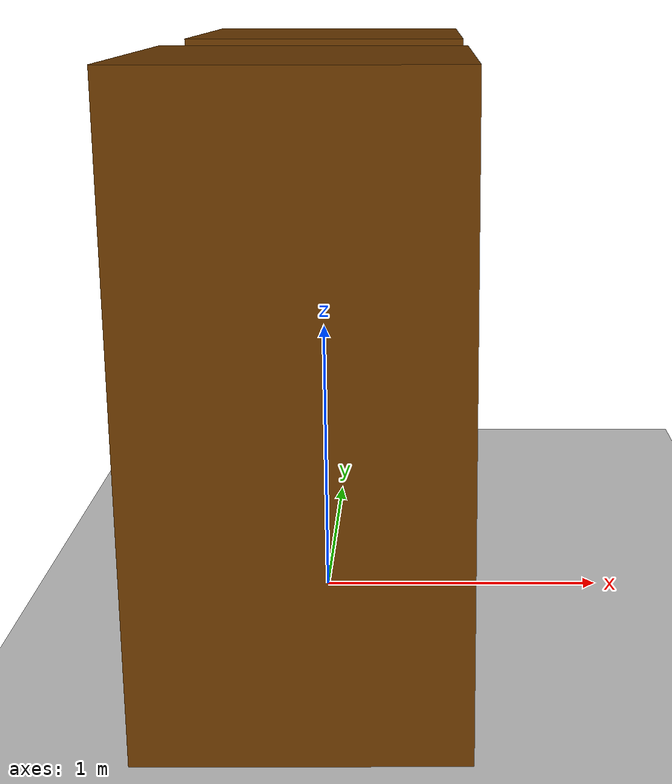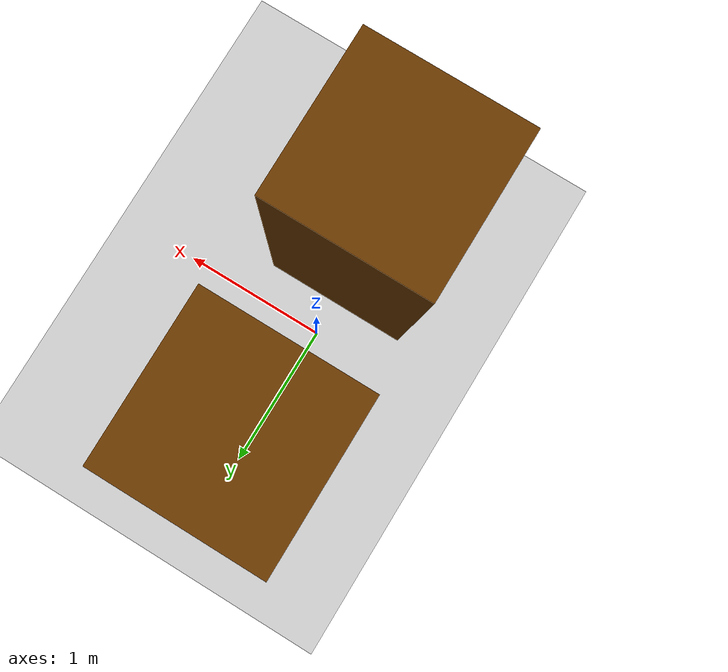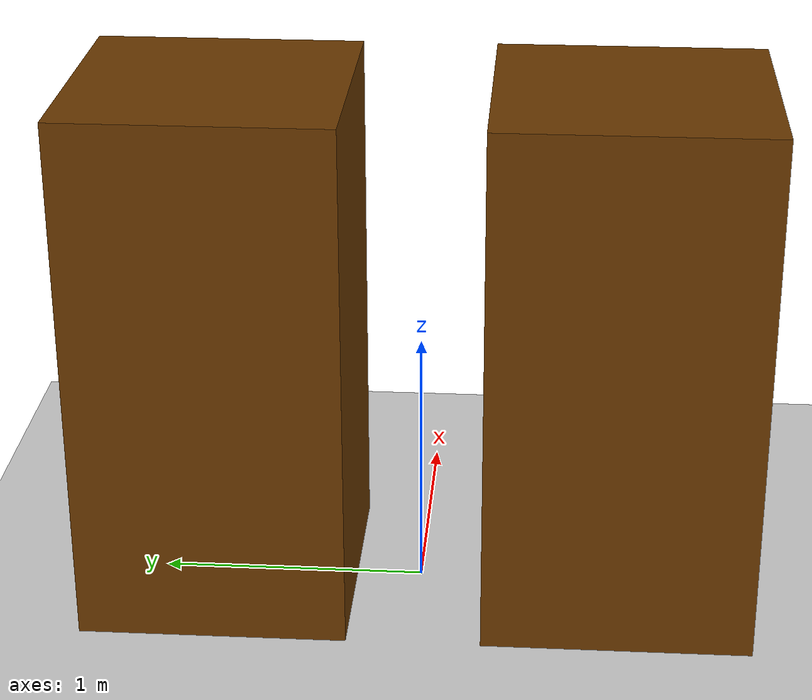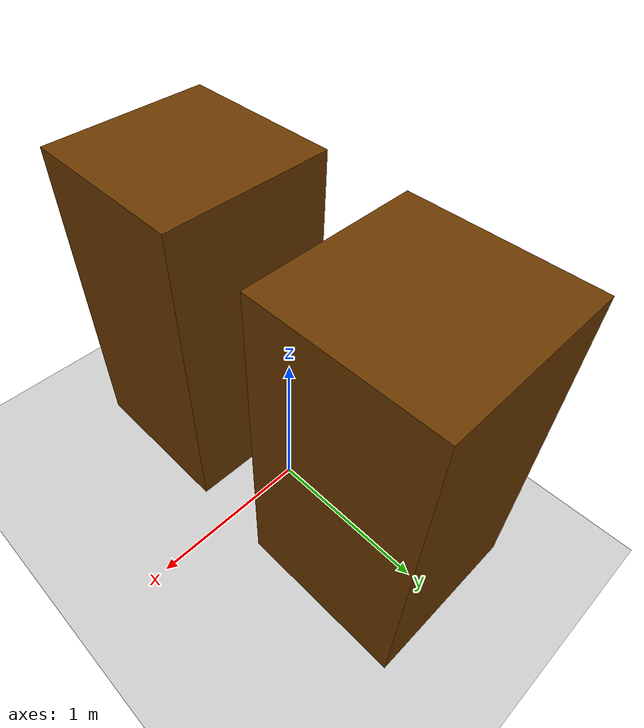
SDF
<?xml version="1.0" ?>
<sdf version="1.6">
    <world name="default">
        <gui>
            <camera name="my_camera">
                <pose>1.5 0.0 1.0 0.0 0.0 3.14</pose>
                <projection_type>orthographic</projection_type>
            </camera>
        </gui>

        <physics type="ode">
        <max_step_size>0.0002</max_step_size>
        <real_time_factor>1</real_time_factor>
        <real_time_update_rate>2500</real_time_update_rate>
        <gravity>0 0 -9.81</gravity>
            <ode>
                <solver>
                <type>quick</type>
                <iters>80</iters>
                <sor>1.3</sor>
                </solver>
                <constraints>
                <cfm>0.0</cfm>
                <erp>0.2</erp>
                <contact_max_correcting_vel>0.1</contact_max_correcting_vel>
                <contact_surface_layer>0.0001</contact_surface_layer>
                </constraints>
            </ode>
        </physics>

        <scene>
        <sky>
            <clouds>
                <speed>12</speed>
            </clouds>
        </sky>
        </scene>
        <!-- A global light source -->
        <include>
            <uri>model://sun</uri>
        </include>
        <!-- A ground plane -->
        <include>
            <uri>model://ground_plane</uri>
        </include>
        <!-- environment blocks, obstacles or stairs -->
        <model name="static_environment">
        <static>true</static>
            <link name="static_box_1">
                <pose>0 0.75 1 0 0 0</pose>
                <collision name="static_box_collision_1">
                    <geometry>
                        <box>
                            <size>1 1 2</size>
                        </box>
                    </geometry>
                </collision>
                <visual name="static_box_visual_1">
                    <geometry>
                        <box>
                            <size>1 1 2</size>
                        </box>
                    </geometry>
                    <surface>
                        <friction>
                            <ode>
                                <mu>Inf</mu>
                                <mu2>Inf</mu2>
                            </ode>
                        </friction>
                    </surface>
                    <material>
                        <ambient>0.2 0.2 0.2 1.0</ambient>
                        <diffuse>.421 0.225 0.0 1.0</diffuse>
                    </material>
                </visual>
            </link>

            <link name="static_box_2">
                <pose>0 -0.75 1 0 0 0</pose>
                <collision name="static_box_collision_2">
                    <geometry>
                        <box>
                            <size>1 1 2</size>
                        </box>
                    </geometry>
                    <surface>
                        <friction>
                            <ode>
                                <mu>Inf</mu>
                                <mu2>Inf</mu2>
                            </ode>
                        </friction>
                    </surface>
                </collision>
                <visual name="static_box_visual_2">
                    <geometry>
                        <box>
                            <size>1 1 2</size>
                        </box>
                    </geometry>
                    <material>
                        <ambient>0.2 0.2 0.2 1.0</ambient>
                        <diffuse>.421 0.225 0.0 1.0</diffuse>
                    </material>
                </visual>
            </link>
        </model>

    </world>
</sdf>
